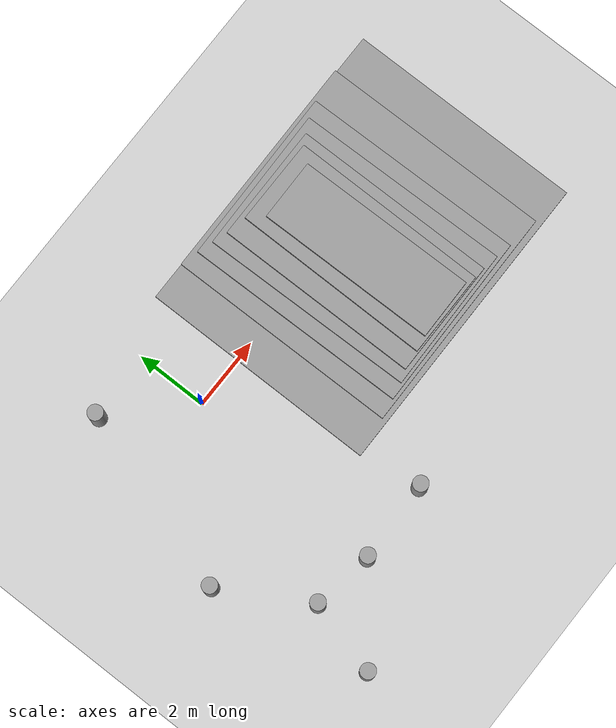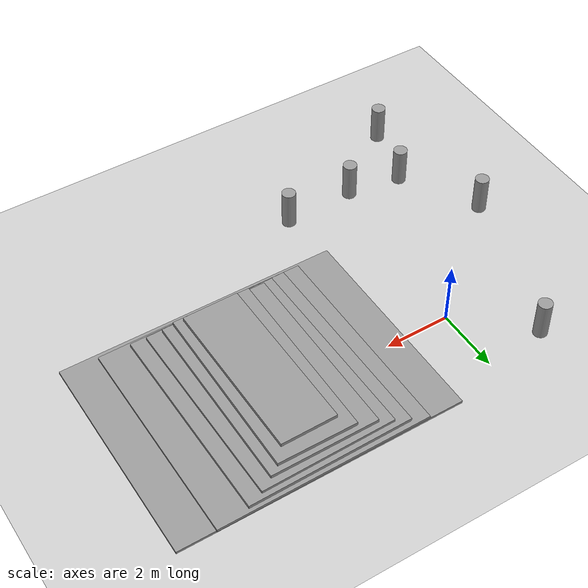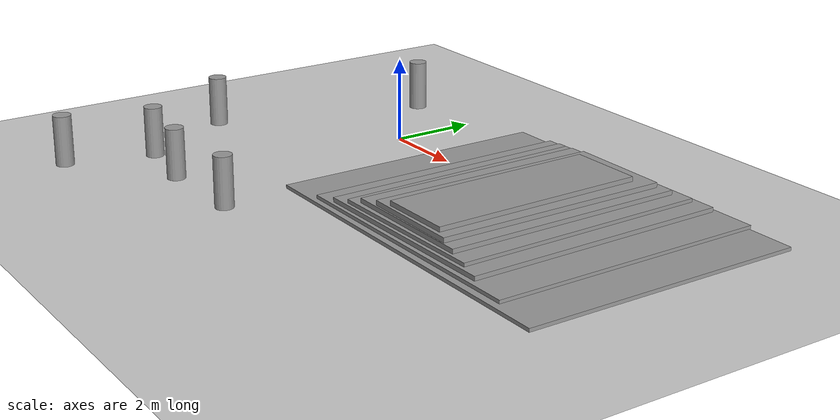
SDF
<sdf version="1.7">
 <world name="default">
  <model name="ground_plane">
   <static>1</static>
   <link name="link">
    <collision name="collision">
     <geometry><plane><normal>0 0 1</normal><size>100 100</size></plane></geometry>
     <surface><friction><ode><mu>0.7</mu><mu2>0.7</mu2></ode></friction></surface>
    </collision>
    <visual name="visual">
     <cast_shadows>0</cast_shadows>
     <geometry><plane><normal>0 0 1</normal><size>100 100</size></plane></geometry>
     <material>
      <script><uri>file://media/materials/scripts/gazebo.material</uri><name>Gazebo/Grey</name></script>
     </material>
    </visual>
   </link>
  </model>
  <light name="sun" type="directional">
   <pose>0 0 10 0 -0 0</pose>
   <diffuse>0.8 0.8 0.8 1</diffuse>
   <specular>0.1 0.1 0.1 1</specular>
   <attenuation>
    <range>1000</range>
    <constant>0.9</constant>
    <linear>0.01</linear>
    <quadratic>0.001</quadratic>
   </attenuation>
   <direction>-0.5 0.5 -1</direction>
   <spot><inner_angle>0</inner_angle><outer_angle>0</outer_angle><falloff>0</falloff></spot>
  </light>
  <gravity>0 0 -9.81</gravity>
  <magnetic_field>6e-06 2.3e-05 -4.2e-05</magnetic_field>
  <atmosphere type="adiabatic"/>
  <physics name="default_physics" default="0" type="ode">
   <max_step_size>0.001</max_step_size>
   <real_time_factor>1</real_time_factor>
   <real_time_update_rate>1000</real_time_update_rate>
  </physics>
  <scene><ambient>0.4 0.4 0.4 1</ambient><background>0.7 0.7 0.7 1</background><shadows>1</shadows></scene>
  <spherical_coordinates>
   <surface_model>EARTH_WGS84</surface_model>
   <latitude_deg>0</latitude_deg>
   <longitude_deg>0</longitude_deg>
   <elevation>0</elevation>
   <heading_deg>0</heading_deg>
  </spherical_coordinates>
  <model name="unit_box">
   <static>1</static>
   <pose>5.78133 -0.659851 0.038678 5e-06 1.5e-05 0.001025</pose>
   <link name="link">
    <inertial>
     <mass>1</mass>
     <inertia>
      <ixx>0.166667</ixx>
      <ixy>0</ixy>
      <ixz>0</ixz>
      <iyy>0.166667</iyy>
      <iyz>0</iyz>
      <izz>0.166667</izz>
     </inertia>
    </inertial>
    <collision name="collision"><geometry><box><size>8.68409 6.67615 0.0802598</size></box></geometry></collision>
    <visual name="visual">
     <geometry><box><size>8.68409 6.67615 0.0802598</size></box></geometry>
     <material>
      <script><name>Gazebo/Grey</name><uri>file://media/materials/scripts/gazebo.material</uri></script>
     </material>
    </visual>
   </link>
  </model>
  <model name="unit_box_clone_clone">
   <static>1</static>
   <pose>5.76077 -0.573205 0.117159 -1.3e-05 1e-05 0.006134</pose>
   <link name="link">
    <inertial>
     <mass>1</mass>
     <inertia>
      <ixx>0.166667</ixx>
      <ixy>0</ixy>
      <ixz>0</ixz>
      <iyy>0.166667</iyy>
      <iyz>0</iyz>
      <izz>0.166667</izz>
     </inertia>
    </inertial>
    <collision name="collision"><geometry><box><size>6.48949 6.53951 0.0795968</size></box></geometry></collision>
    <visual name="visual">
     <geometry><box><size>6.48949 6.53951 0.0795968</size></box></geometry>
     <material>
      <script><name>Gazebo/Grey</name><uri>file://media/materials/scripts/gazebo.material</uri></script>
     </material>
    </visual>
   </link>
  </model>
  <model name="unit_box_clone_clone_0">
   <static>1</static>
   <pose>5.54636 -0.5858 0.19901 -6.8e-05 1e-05 0.013495</pose>
   <link name="link">
    <inertial>
     <mass>1</mass>
     <inertia>
      <ixx>0.166667</ixx>
      <ixy>0</ixy>
      <ixz>0</ixz>
      <iyy>0.166667</iyy>
      <iyz>0</iyz>
      <izz>0.166667</izz>
     </inertia>
    </inertial>
    <collision name="collision"><geometry><box><size>5.00877 6.30633 0.119846</size></box></geometry></collision>
    <visual name="visual">
     <geometry><box><size>5.00877 6.30633 0.119846</size></box></geometry>
     <material>
      <script><name>Gazebo/Grey</name><uri>file://media/materials/scripts/gazebo.material</uri></script>
     </material>
    </visual>
   </link>
  </model>
  <model name="unit_box_clone_clone_1">
   <static>1</static>
   <pose>5.53214 -0.620945 0.264766 -6.9e-05 1e-05 0.016868</pose>
   <link name="link">
    <inertial>
     <mass>1</mass>
     <inertia>
      <ixx>0.166667</ixx>
      <ixy>0</ixy>
      <ixz>0</ixz>
      <iyy>0.166667</iyy>
      <iyz>0</iyz>
      <izz>0.166667</izz>
     </inertia>
    </inertial>
    <collision name="collision"><geometry><box><size>4.10589 6.06711 0.157911</size></box></geometry></collision>
    <visual name="visual">
     <geometry><box><size>4.10589 6.06711 0.157911</size></box></geometry>
     <material>
      <script><name>Gazebo/Grey</name><uri>file://media/materials/scripts/gazebo.material</uri></script>
     </material>
    </visual>
   </link>
  </model>
  <model name="unit_box_0">
   <static>1</static>
   <pose>5.50051 -0.666735 0.396683 1.6e-05 4.6e-05 0.004141</pose>
   <link name="link">
    <inertial>
     <mass>1</mass>
     <inertia>
      <ixx>0.166667</ixx>
      <ixy>0</ixy>
      <ixz>0</ixz>
      <iyy>0.166667</iyy>
      <iyz>0</iyz>
      <izz>0.166667</izz>
     </inertia>
    </inertial>
    <collision name="collision"><geometry><box><size>3.30244 5.78441 0.106291</size></box></geometry></collision>
    <visual name="visual">
     <geometry><box><size>3.30244 5.78441 0.106291</size></box></geometry>
     <material>
      <script><name>Gazebo/Grey</name><uri>file://media/materials/scripts/gazebo.material</uri></script>
     </material>
    </visual>
   </link>
  </model>
  <model name="unit_box_1">
   <static>1</static>
   <pose>5.61716 -0.726986 0.507139 1.6e-05 4.6e-05 -0.0027</pose>
   <link name="link">
    <inertial>
     <mass>1</mass>
     <inertia>
      <ixx>0.166667</ixx>
      <ixy>0</ixy>
      <ixz>0</ixz>
      <iyy>0.166667</iyy>
      <iyz>0</iyz>
      <izz>0.166667</izz>
     </inertia>
    </inertial>
    <collision name="collision"><geometry><box><size>2.4323 5.5961 0.114633</size></box></geometry></collision>
    <visual name="visual">
     <geometry><box><size>2.4323 5.5961 0.114633</size></box></geometry>
     <material>
      <script><name>Gazebo/Grey</name><uri>file://media/materials/scripts/gazebo.material</uri></script>
     </material>
    </visual>
   </link>
  </model>
  <model name="unit_box_2">
   <static>1</static>
   <pose>5.65457 -0.888156 0.620223 -0.000145 0.000178 0.010165</pose>
   <link name="link">
    <inertial>
     <mass>1</mass>
     <inertia>
      <ixx>0.166667</ixx>
      <ixy>0</ixy>
      <ixz>0</ixz>
      <iyy>0.166667</iyy>
      <iyz>0</iyz>
      <izz>0.166667</izz>
     </inertia>
    </inertial>
    <collision name="collision"><geometry><box><size>1.73607 5.10485 0.112139</size></box></geometry></collision>
    <visual name="visual">
     <geometry><box><size>1.73607 5.10485 0.112139</size></box></geometry>
     <material>
      <script><name>Gazebo/Grey</name><uri>file://media/materials/scripts/gazebo.material</uri></script>
     </material>
    </visual>
   </link>
  </model>
  <model name="unit_cylinder">
   <pose>-1.91085 1.83409 0.604156 0 -0 1e-06</pose>
   <link name="link">
    <inertial>
     <mass>1</mass>
     <inertia><ixx>0.145833</ixx><ixy>0</ixy><ixz>0</ixz><iyy>0.145833</iyy><iyz>0</iyz><izz>0.125</izz></inertia>
    </inertial>
    <collision name="collision">
     <geometry><cylinder><radius>0.21582</radius><length>1.20833</length></cylinder></geometry>
    </collision>
    <visual name="visual">
     <geometry><cylinder><radius>0.21582</radius><length>1.20833</length></cylinder></geometry>
     <material>
      <script><name>Gazebo/Grey</name><uri>file://media/materials/scripts/gazebo.material</uri></script>
     </material>
    </visual>
   </link>
  </model>
  <model name="unit_cylinder_clone">
   <pose>-0.513711 -5.75064 0.604164 0 -0 2e-06</pose>
   <link name="link">
    <inertial>
     <mass>1</mass>
     <inertia><ixx>0.145833</ixx><ixy>0</ixy><ixz>0</ixz><iyy>0.145833</iyy><iyz>0</iyz><izz>0.125</izz></inertia>
    </inertial>
    <collision name="collision">
     <geometry><cylinder><radius>0.21582</radius><length>1.20833</length></cylinder></geometry>
    </collision>
    <visual name="visual">
     <geometry><cylinder><radius>0.21582</radius><length>1.20833</length></cylinder></geometry>
     <material>
      <script><name>Gazebo/Grey</name><uri>file://media/materials/scripts/gazebo.material</uri></script>
     </material>
    </visual>
   </link>
  </model>
  <model name="unit_cylinder_clone_0">
   <pose>1.71239 -5.68626 0.604156 0 -0 2e-06</pose>
   <link name="link">
    <inertial>
     <mass>1</mass>
     <inertia><ixx>0.145833</ixx><ixy>0</ixy><ixz>0</ixz><iyy>0.145833</iyy><iyz>0</iyz><izz>0.125</izz></inertia>
    </inertial>
    <collision name="collision">
     <geometry><cylinder><radius>0.21582</radius><length>1.20833</length></cylinder></geometry>
    </collision>
    <visual name="visual">
     <geometry><cylinder><radius>0.21582</radius><length>1.20833</length></cylinder></geometry>
     <material>
      <script><name>Gazebo/Grey</name><uri>file://media/materials/scripts/gazebo.material</uri></script>
     </material>
    </visual>
   </link>
  </model>
  <model name="unit_cylinder_clone_1">
   <pose>-2.19874 -5.49234 0.604156 0 -0 2e-06</pose>
   <link name="link">
    <inertial>
     <mass>1</mass>
     <inertia><ixx>0.145833</ixx><ixy>0</ixy><ixz>0</ixz><iyy>0.145833</iyy><iyz>0</iyz><izz>0.125</izz></inertia>
    </inertial>
    <collision name="collision">
     <geometry><cylinder><radius>0.21582</radius><length>1.20833</length></cylinder></geometry>
    </collision>
    <visual name="visual">
     <geometry><cylinder><radius>0.21582</radius><length>1.20833</length></cylinder></geometry>
     <material>
      <script><name>Gazebo/Grey</name><uri>file://media/materials/scripts/gazebo.material</uri></script>
     </material>
    </visual>
   </link>
  </model>
  <model name="unit_cylinder_clone_2">
   <pose>-3.53084 -3.11746 0.604164 0 -0 1e-06</pose>
   <link name="link">
    <inertial>
     <mass>1</mass>
     <inertia><ixx>0.145833</ixx><ixy>0</ixy><ixz>0</ixz><iyy>0.145833</iyy><iyz>0</iyz><izz>0.125</izz></inertia>
    </inertial>
    <collision name="collision">
     <geometry><cylinder><radius>0.21582</radius><length>1.20833</length></cylinder></geometry>
    </collision>
    <visual name="visual">
     <geometry><cylinder><radius>0.21582</radius><length>1.20833</length></cylinder></geometry>
     <material>
      <script><name>Gazebo/Grey</name><uri>file://media/materials/scripts/gazebo.material</uri></script>
     </material>
    </visual>
   </link>
  </model>
  <model name="unit_cylinder_clone_2_clone">
   <pose>-2.767 -7.51437 0.604164 0 -0 3e-06</pose>
   <link name="link">
    <inertial>
     <mass>1</mass>
     <inertia><ixx>0.145833</ixx><ixy>0</ixy><ixz>0</ixz><iyy>0.145833</iyy><iyz>0</iyz><izz>0.125</izz></inertia>
    </inertial>
    <collision name="collision">
     <geometry><cylinder><radius>0.21582</radius><length>1.20833</length></cylinder></geometry>
    </collision>
    <visual name="visual">
     <geometry><cylinder><radius>0.21582</radius><length>1.20833</length></cylinder></geometry>
     <material>
      <script><name>Gazebo/Grey</name><uri>file://media/materials/scripts/gazebo.material</uri></script>
     </material>
    </visual>
   </link>
  </model>
 </world>
</sdf>
